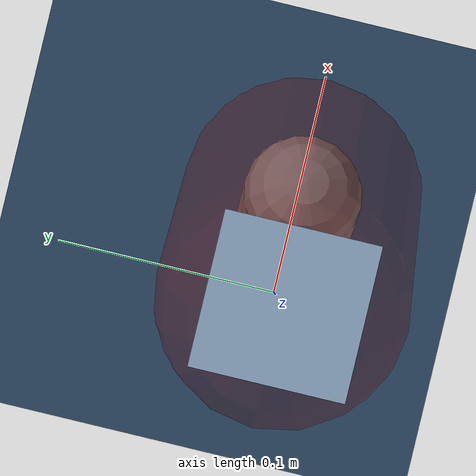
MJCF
<mujoco model="Hopper2D">
	<compiler inertiafromgeom="true" angle="radian" />
	<option timestep="0.001" integrator="implicit" cone="elliptic" solver="Newton" tolerance="1e-10" />

	<default>
		<geom contype="1" conaffinity="1" condim="3" friction="2 0.005 0.0001" solref="0.005 1" />
		<joint limited="true" damping="0.1" />
	</default>

	<asset>
		<texture name="skybox" type="skybox" builtin="gradient" rgb1=".4 .6 .8" rgb2="0 0 0" width="800" height="800" />
		<texture name="grid" type="2d" builtin="checker" rgb1=".1 .2 .3" rgb2=".2 .3 .4" width="300" height="300" mark="edge" markrgb=".2 .3 .4" />
		<material name="ground" texture="grid" texrepeat="1 1" texuniform="true" reflectance="0.1" />
		<material name="leg" rgba="0.5 0.6 0.7 1" />
	</asset>

	<worldbody>

		<geom name="floor" type="plane" size="5 5 0.25" material="ground" />

		<light directional="false" diffuse="0.8 0.8 0.8" specular="0.3 0.3 0.3" pos="0 0 2" dir="0 0 -1" />
		<light mode="targetbodycom" target="base" directional="false" diffuse="0.8 0.8 0.8" specular="0.3 0.3 0.3" pos="0 0 2" dir="0 0 -1" />

		<camera name="fixed" pos="0 -2 1" xyaxes="1 0 0 0 0 1" />
		<camera name="tracking" mode="trackcom" pos="0 -3 1" />

		<body name="root" pos="0 0 0.3902804291837082">
			<joint name="slide_x" type="slide" axis="1 0 0" range="-100 100" />
			<joint name="slide_z" type="slide" axis="0 0 1" range="0 10" />

			<body name="base" pos="0 0 0">
				<geom name="torso" type="box" size="0.03 0.03 0.1" mass="1.806" material="leg" />

				<body name="link1" pos="0 0 0" euler="0 1.3417410208952012 0">
					<joint type="hinge" axis="0 -1 0" pos="0 0 0" name="hinge1" limited="true" range="-3.14 3.14" stiffness="0" damping="0.1" />
					<geom name="thigh" type="capsule" fromto="0 0 0 0.1957453417059519 0 0" size="0.05" rgba="0.5 0 0 0.3" mass="0.7190888200942845" />

					<body name="link2" pos="0.1957453417059519 0 0" euler="0 0.4481027942704957 0">
						<joint type="hinge" axis="0 -1 0" pos="0 0 0" name="hinge2" limited="true" range="-3.14 3.14" stiffness="0" damping="0.1" />
						<geom name="shank" type="capsule" fromto="0 0 0 0.20453508747775628 0 0" size="0.025" mass="0.40472806998220506" />

					</body>
				</body>
			</body>
		</body>
	</worldbody>

	<actuator>
		<motor name="torque1" joint="hinge1" ctrlrange="-30.03464341164637 30.03464341164637" ctrllimited="true" gear="1" />
		<motor name="torque2" joint="hinge2" ctrlrange="-12.563857080238384 12.563857080238384" ctrllimited="true" gear="1" />
	</actuator>
</mujoco>
